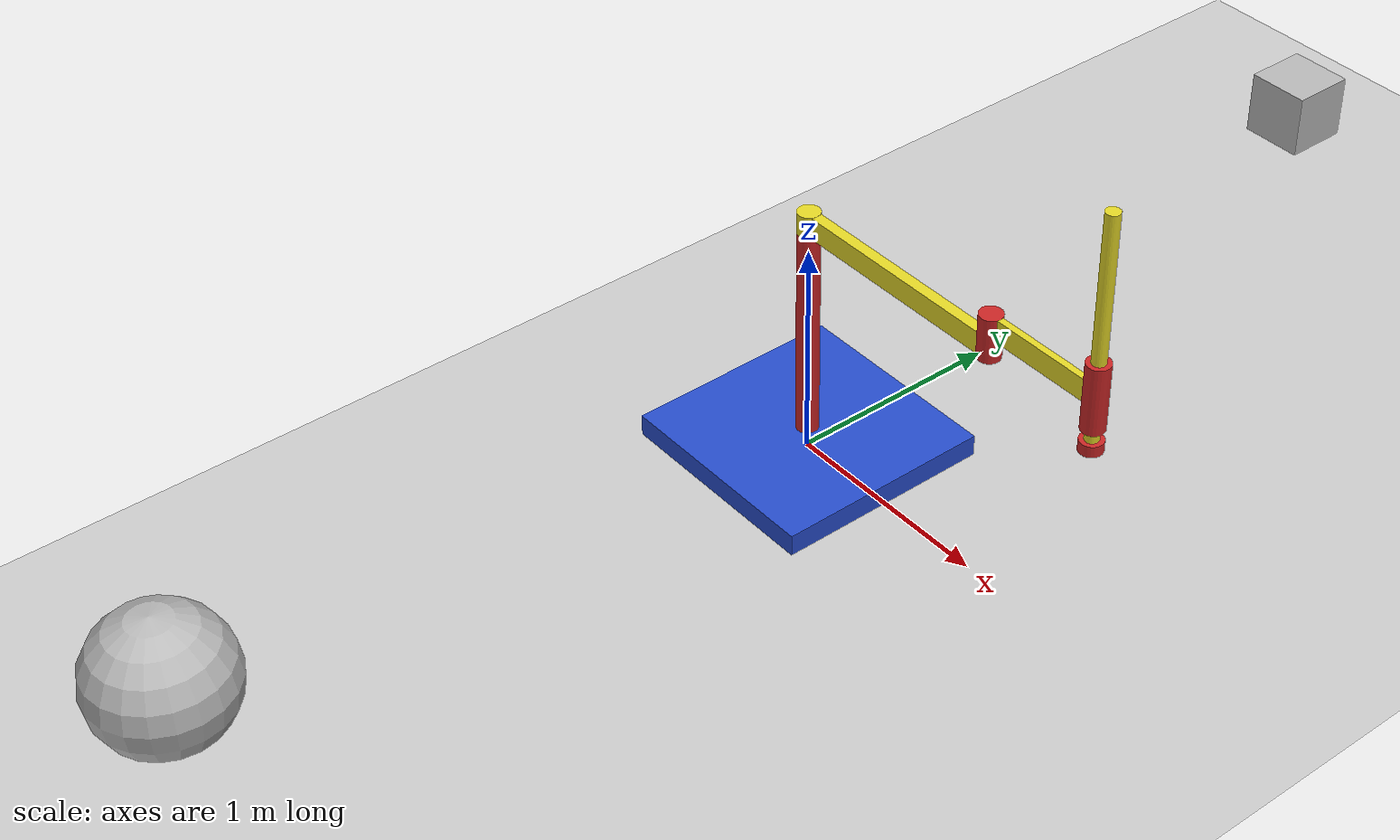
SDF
<?xml version="1.0"?>
<sdf version="1.6">
  <world name="default">

    <include>
      <uri>model://ground_plane</uri>
    </include>

    <include>
      <uri>model://sun</uri>
    </include>
    <model name="simple_arm_mod">
      <link name="arm_base">
        <inertial>
          <pose>0 0 0.00099 0 0 0</pose>
          <inertia>
            <ixx>1.11</ixx>
            <ixy>0</ixy>
            <ixz>0</ixz>
            <iyy>100.11</iyy>
            <iyz>0</iyz>
            <izz>1.01</izz>
          </inertia>
          <mass>101.0</mass>
        </inertial>
        <collision name="arm_base_geom">
          <pose>0 0 0.05 0 0 0</pose>
          <geometry>
            <box>
              <size>1.0 1.0 0.1</size>
            </box>
          </geometry>
        </collision>
        <visual name="arm_base_geom_visual">
          <pose>0 0 0.05 0 0 0</pose>
          <geometry>
            <box>
              <size>1.0 1.0 0.1</size>
            </box>
          </geometry>
          <material>
            <script>
              <uri>file://media/materials/scripts/gazebo.material</uri>
              <name>Gazebo/Blue</name>
            </script>
          </material>
        </visual>
        <collision name="arm_base_geom_arm_trunk">
          <pose>0 0 0.6 0 0 0</pose>
          <geometry>
            <cylinder>
              <radius>0.05</radius>
              <length>1.0</length>
            </cylinder>
          </geometry>
        </collision>
        <visual name="arm_base_geom_arm_trunk_visual">
          <pose>0 0 0.6 0 0 0</pose>
          <geometry>
            <cylinder>
              <radius>0.05</radius>
              <length>1.0</length>
            </cylinder>
          </geometry>
          <material>
            <script>
              <uri>file://media/materials/scripts/gazebo.material</uri>
              <name>Gazebo/Red</name>
            </script>
          </material>
        </visual>
      </link>
      <link name="arm_shoulder_pan">
        <pose>0 0 1.1 0 0 0</pose>
        <inertial>
          <pose>0.045455 0 0 0 0 0</pose>
          <inertia>
            <ixx>0.011</ixx>
            <ixy>0</ixy>
            <ixz>0</ixz>
            <iyy>0.0225</iyy>
            <iyz>0</iyz>
            <izz>0.0135</izz>
          </inertia>
          <mass>1.1</mass>
        </inertial>
        <collision name="arm_shoulder_pan_geom">
          <pose>0 0 0.05 0 0 0</pose>
          <geometry>
            <cylinder>
              <radius>0.05</radius>
              <length>0.1</length>
            </cylinder>
          </geometry>
        </collision>
        <visual name="arm_shoulder_pan_geom_visual">
          <pose>0 0 0.05 0 0 0</pose>
          <geometry>
            <cylinder>
              <radius>0.05</radius>
              <length>0.1</length>
            </cylinder>
          </geometry>
          <material>
            <script>
              <uri>file://media/materials/scripts/gazebo.material</uri>
              <name>Gazebo/Yellow</name>
            </script>
          </material>
        </visual>
        <collision name="arm_shoulder_pan_geom_arm_shoulder">
          <pose>0.55 0 0.05 0 0 0</pose>
          <geometry>
            <box>
              <size>1.0 0.05 0.1</size>
            </box>
          </geometry>
        </collision>
        <visual name="arm_shoulder_pan_geom_arm_shoulder_visual">
          <pose>0.55 0 0.05 0 0 0</pose>
          <geometry>
            <box>
              <size>1.0 0.05 0.1</size>
            </box>
          </geometry>
          <material>
            <script>
              <uri>file://media/materials/scripts/gazebo.material</uri>
              <name>Gazebo/Yellow</name>
            </script>
          </material>
        </visual>
      </link>
      <link name="arm_elbow_pan">
        <pose>1.05 0 1.1 0 0 0</pose>
        <inertial>
          <pose>0.0875 0 0.083333 0 0 0</pose>
          <inertia>
            <ixx>0.031</ixx>
            <ixy>0</ixy>
            <ixz>0.005</ixz>
            <iyy>0.07275</iyy>
            <iyz>0</iyz>
            <izz>0.04475</izz>
          </inertia>
          <mass>1.2</mass>
        </inertial>
        <collision name="arm_elbow_pan_geom">
          <pose>0 0 0.1 0 0 0</pose>
          <geometry>
            <cylinder>
              <radius>0.05</radius>
              <length>0.2</length>
            </cylinder>
          </geometry>
        </collision>
        <visual name="arm_elbow_pan_geom_visual">
          <pose>0 0 0.1 0 0 0</pose>
          <geometry>
            <cylinder>
              <radius>0.05</radius>
              <length>0.2</length>
            </cylinder>
          </geometry>
          <material>
            <script>
              <uri>file://media/materials/scripts/gazebo.material</uri>
              <name>Gazebo/Red</name>
            </script>
          </material>
        </visual>
        <collision name="arm_elbow_pan_geom_arm_elbow">
          <pose>0.3 0 0.15 0 0 0</pose>
          <geometry>
            <box>
              <size>0.5 0.03 0.1</size>
            </box>
          </geometry>
        </collision>
        <visual name="arm_elbow_pan_geom_arm_elbow_visual">
          <pose>0.3 0 0.15 0 0 0</pose>
          <geometry>
            <box>
              <size>0.5 0.03 0.1</size>
            </box>
          </geometry>
          <material>
            <script>
              <uri>file://media/materials/scripts/gazebo.material</uri>
              <name>Gazebo/Yellow</name>
            </script>
          </material>
        </visual>
        <collision name="arm_elbow_pan_geom_arm_wrist">
          <pose>0.55 0 0.15 0 0 0</pose>
          <geometry>
            <cylinder>
              <radius>0.05</radius>
              <length>0.3</length>
            </cylinder>
          </geometry>
        </collision>
        <visual name="arm_elbow_pan_geom_arm_wrist_visual">
          <pose>0.55 0 0.15 0 0 0</pose>
          <geometry>
            <cylinder>
              <radius>0.05</radius>
              <length>0.3</length>
            </cylinder>
          </geometry>
          <material>
            <script>
              <uri>file://media/materials/scripts/gazebo.material</uri>
              <name>Gazebo/Red</name>
            </script>
          </material>
        </visual>
      </link>
      <link name="arm_wrist_lift">
        <pose>1.6 0 1.05 0 0 0</pose>
        <inertial>
          <pose>0 0 0 0 0 0</pose>
          <inertia>
            <ixx>0.01</ixx>
            <ixy>0</ixy>
            <ixz>0</ixz>
            <iyy>0.01</iyy>
            <iyz>0</iyz>
            <izz>0.001</izz>
          </inertia>
          <mass>0.1</mass>
        </inertial>
        <collision name="arm_wrist_lift_geom">
          <pose>0 0 0.5 0 0 0</pose>
          <geometry>
            <cylinder>
              <radius>0.03</radius>
              <length>1.0</length>
            </cylinder>
          </geometry>
        </collision>
        <visual name="arm_wrist_lift_geom_visual">
          <pose>0 0 0.5 0 0 0</pose>
          <geometry>
            <cylinder>
              <radius>0.03</radius>
              <length>1.0</length>
            </cylinder>
          </geometry>
          <material>
            <script>
              <uri>file://media/materials/scripts/gazebo.material</uri>
              <name>Gazebo/Yellow</name>
            </script>
          </material>
        </visual>
      </link>
      <link name="arm_wrist_roll">
        <pose>1.6 0 1.0 0 0 0</pose>
        <inertial>
          <pose>0 0 0 0 0 0</pose>
          <inertia>
            <ixx>0.01</ixx>
            <ixy>0</ixy>
            <ixz>0</ixz>
            <iyy>0.01</iyy>
            <iyz>0</iyz>
            <izz>0.001</izz>
          </inertia>
          <mass>0.1</mass>
        </inertial>
        <collision name="arm_wrist_roll_geom">
          <pose>0 0 0.025 0 0 0</pose>
          <geometry>
            <cylinder>
              <radius>0.05</radius>
              <length>0.05</length>
            </cylinder>
          </geometry>
        </collision>
        <visual name="arm_wrist_roll_geom_visual">
          <pose>0 0 0.025 0 0 0</pose>
          <geometry>
            <cylinder>
              <radius>0.05</radius>
              <length>0.05</length>
            </cylinder>
          </geometry>
          <material>
            <script>
              <uri>file://media/materials/scripts/gazebo.material</uri>
              <name>Gazebo/Red</name>
            </script>
          </material>
        </visual>
      </link>
      <joint name="arm_shoulder_pan_joint" type="revolute">
        <parent>arm_base</parent>
        <child>arm_shoulder_pan</child>
        <axis>
          <dynamics>
            <damping>1.000000</damping>
            <friction>0.000000</friction>
          </dynamics>
          <xyz>0 0 1</xyz>
          <use_parent_model_frame>true</use_parent_model_frame>
        </axis>
      </joint>
      <joint name="arm_elbow_pan_joint" type="revolute">
        <parent>arm_shoulder_pan</parent>
        <child>arm_elbow_pan</child>
        <axis>
          <dynamics>
            <damping>1.000000</damping>
            <friction>0.000000</friction>
          </dynamics>
          <xyz>0 0 1</xyz>
          <use_parent_model_frame>true</use_parent_model_frame>
        </axis>
      </joint>
      <joint name="arm_wrist_lift_joint" type="prismatic">
        <parent>arm_elbow_pan</parent>
        <child>arm_wrist_lift</child>
        <axis>
          <dynamics>
            <damping>1.000000</damping>
            <friction>0.000000</friction>
          </dynamics>
          <limit>
            <lower>-0.8</lower>
            <upper>0.1</upper>
          </limit>
          <xyz>0 0 1</xyz>
          <use_parent_model_frame>true</use_parent_model_frame>
        </axis>
      </joint>
      <joint name="arm_wrist_roll_joint" type="revolute">
        <parent>arm_wrist_lift</parent>
        <child>arm_wrist_roll</child>
        <axis>
          <dynamics>
            <damping>1.000000</damping>
            <friction>0.000000</friction>
          </dynamics>
          <limit>
            <lower>-2.999994</lower>
            <upper>2.999994</upper>
          </limit>
          <xyz>0 0 1</xyz>
          <use_parent_model_frame>true</use_parent_model_frame>
        </axis>
      </joint>
    </model>
    <model name="A">
      <pose>0 3 0.5 0 0 1.57</pose>
      <link name="linkA">
        <collision name="collision">
          <geometry>
            <box>
              <size>0.3 0.3 0.3</size>
            </box>
          </geometry>
        </collision>
        <visual name="visual">
          <geometry>
            <box>
              <size>0.3 0.3 0.3</size>
            </box>
          </geometry>
        </visual>
      </link>
    </model>
    <model name="B">
      <pose>0 -3 0.5 0 0 1.57</pose>
      <link name="linkB">
        <collision name="collision">
          <geometry>
            <sphere>
                <radius>0.3</radius>
            </sphere>
          </geometry>
        </collision>
        <visual name="visual">
          <geometry>
            <sphere>
                <radius>0.3</radius>
            </sphere>
          </geometry>
        </visual>
      </link>
      <link name="linkA">
        <collision name="collision">
          <geometry>
            <box>
              <size>0.3 0.3 0.3</size>
            </box>
          </geometry>
        </collision>
        <visual name="visual">
          <geometry>
            <box>
              <size>0.3 0.3 0.3</size>
            </box>
          </geometry>
        </visual>
      </link>

    </model>

    <plugin name="gazebo_no_physics_world_plugin" filename="libgazebo_no_physics.so"></plugin>
  </world>
</sdf>
